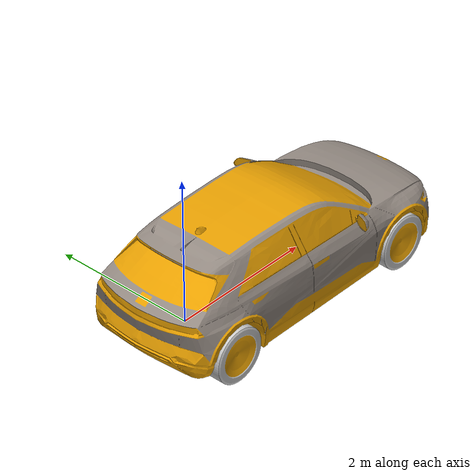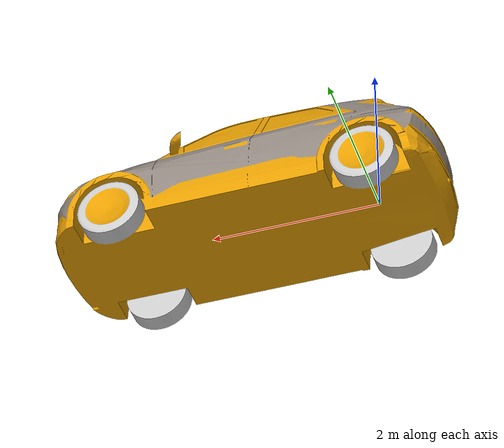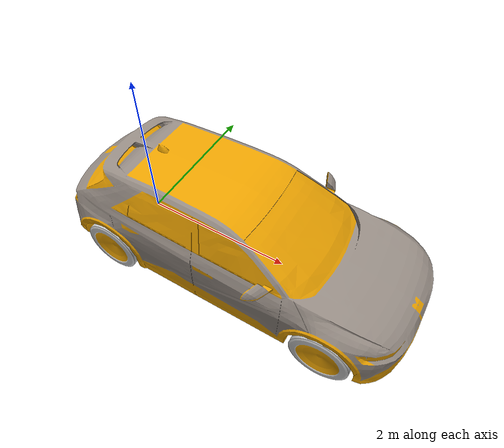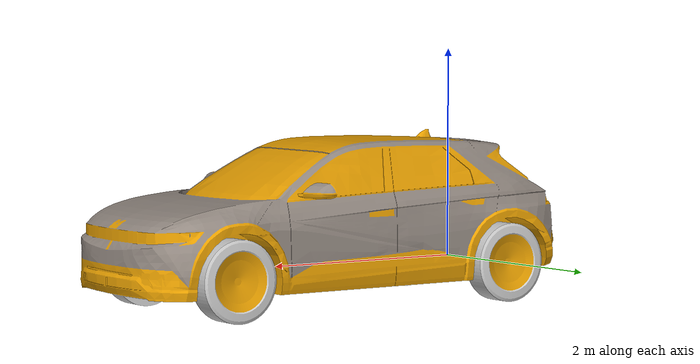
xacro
<?xml version="1.0"?>
<robot name="ioniq5" xmlns:xacro="http://www.ros.org/wiki/xacro">
  <xacro:property name="vehicle_length" value="4.635"/>
  <xacro:property name="vehicle_body_width" value="1.890"/>
  <xacro:property name="vehicle_mirror_width" value="2.134"/>
  <xacro:property name="vehicle_height" value="1.600"/>
  <xacro:property name="tire_outer_diameter" value="0.741"/>
  <xacro:property name="wheel_radius" value="${tire_outer_diameter / 2.0}"/>
  <xacro:property name="vehicle_center_x" value="1.5275"/>
  <xacro:property name="vehicle_center_z" value="0.800"/>
  <xacro:property name="visual_x_offset" value="-0.0500"/>
  <xacro:property name="visual_z_offset" value="${-wheel_radius}"/>

  <link name="base_link">
    <visual name="ioniq5_visual">
      <origin xyz="${visual_x_offset} 0 ${visual_z_offset}" rpy="0 0 0"/>
      <geometry>
        <mesh
          filename="package://ioniq5/meshes/ioniq5/ioniq5_base_link.dae"
          scale="1 1 1"/>
      </geometry>
    </visual>

    <collision name="ioniq5_body_box">
      <origin xyz="${vehicle_center_x + visual_x_offset} 0 ${vehicle_center_z + visual_z_offset}" rpy="0 0 0"/>
      <geometry>
        <box size="${vehicle_length} ${vehicle_body_width} ${vehicle_height}"/>
      </geometry>
    </collision>
  </link>
</robot>
